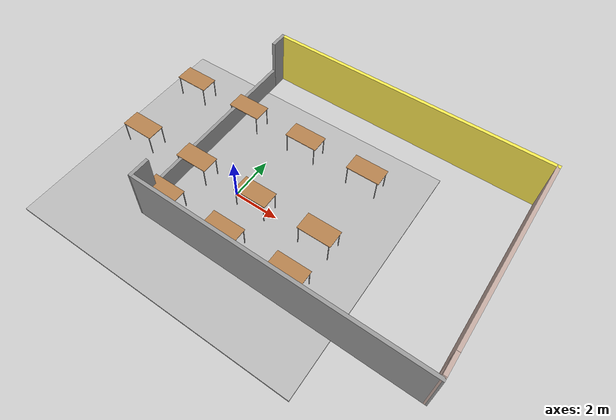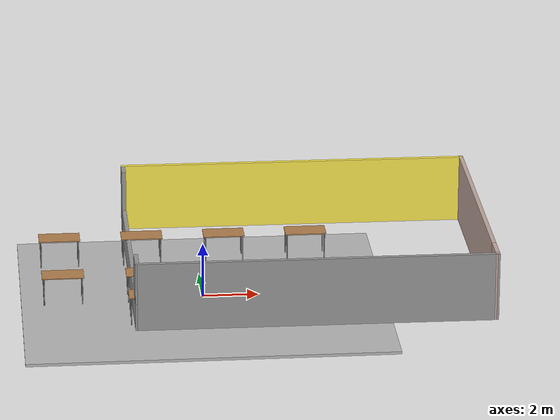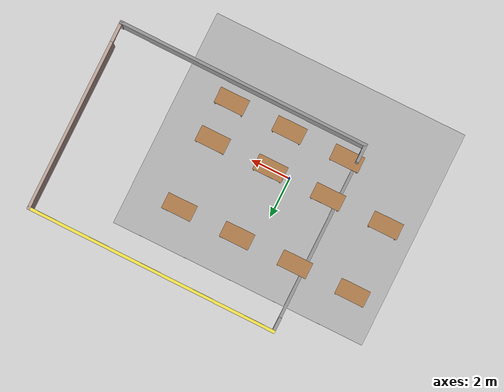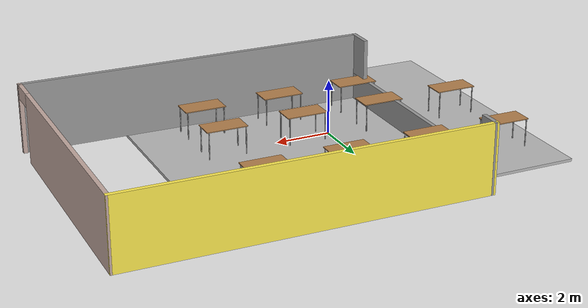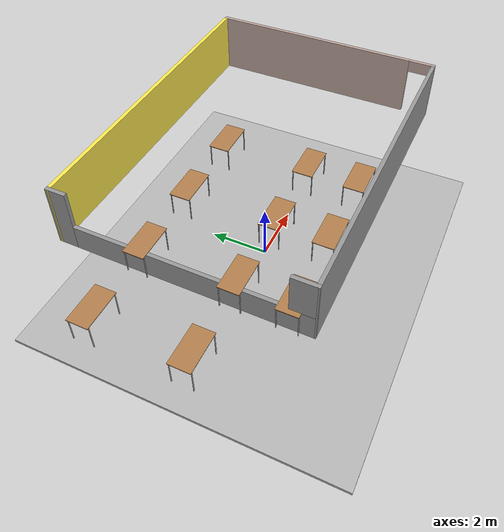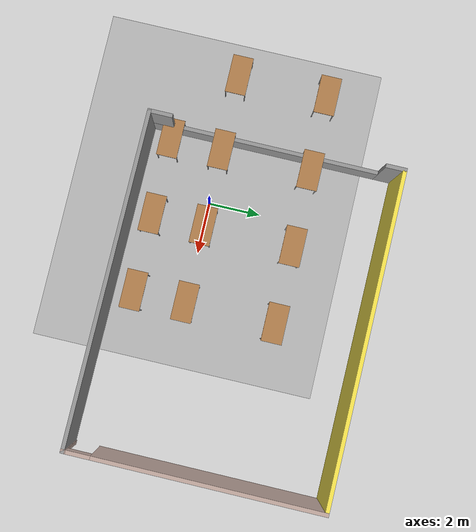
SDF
<sdf version="1.4">
 <world name="default">
  <scene><ambient>0.8 0.8 0.8 1</ambient><background>0.7 0.7 0.7 1</background><shadows>true</shadows></scene>
  <include><uri>model://sun</uri><pose>-2.0 2.0 2.0 0 0 0</pose></include>
  <include><uri>model://mundoteste/pisosala</uri><pose>0 0 0 0 0 -1.57</pose></include>
  <include><uri>model://mundoteste/mesa</uri><pose>-5 0 0 0 0 0</pose></include>
  <include><uri>model://mundoteste/mesa</uri><pose>-2 0 0 0 0 0</pose></include>
  <include><uri>model://mundoteste/mesa</uri><pose>1 0 0 0 0 0</pose></include>
  <include><uri>model://mundoteste/mesa</uri><pose>4 0 0 0 0 0</pose></include>
  <include><uri>model://mundoteste/mesa</uri><pose>-2 -2 0 0 0 0</pose></include>
  <include><uri>model://mundoteste/mesa</uri><pose>1 -2 0 0 0 0</pose></include>
  <include><uri>model://mundoteste/mesa</uri><pose>4 -2 0 0 0 0</pose></include>
  <include><uri>model://mundoteste/mesa</uri><pose>-5 3.5 0 0 0 0</pose></include>
  <include><uri>model://mundoteste/mesa</uri><pose>-2 3.5 0 0 0 0</pose></include>
  <include><uri>model://mundoteste/mesa</uri><pose>1 3.5 0 0 0 0</pose></include>
  <include><uri>model://mundoteste/mesa</uri><pose>4 3.5 0 0 0 0</pose></include>
  <include><uri>model://lab404</uri></include>
  <physics type="ode">
   <real_time_update_rate>1000.0</real_time_update_rate>
   <max_step_size>0.001</max_step_size>
   <real_time_factor>1</real_time_factor>
   <ode>
    <solver>
     <type>quick</type>
     <iters>150</iters>
     <precon_iters>0</precon_iters>
     <sor>1.400000</sor>
     <use_dynamic_moi_rescaling>1</use_dynamic_moi_rescaling>
    </solver>
    <constraints>
     <cfm>0.00001</cfm>
     <erp>0.2</erp>
     <contact_max_correcting_vel>2000.000000</contact_max_correcting_vel>
     <contact_surface_layer>0.01000</contact_surface_layer>
    </constraints>
   </ode>
  </physics>
 </world>
</sdf>

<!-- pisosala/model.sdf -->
<sdf version="1.6">
  <model name="pisosala_forca">
    <static>true</static>
    <link name="course_link">
      <collision name="course_collision">
        <geometry>
          <plane>
            <normal>0 0 1</normal>
            <size>10 13</size>
          </plane>
        </geometry>
        <surface>
          <friction>
            <ode>
              <mu>100</mu>
              <mu2>50</mu2>
            </ode>
          </friction>
        </surface>
      </collision>
      <visual name="course_visual">
        <cast_shadows>false</cast_shadows>
        <geometry>
          <mesh>
            <uri>model://forca/pisosala/materials/scripts/piso.dae</uri>
            <scale>1 1 1</scale>
          </mesh>
        </geometry>
      </visual>
    </link>
  </model>
</sdf>

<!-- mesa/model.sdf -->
<sdf version='1.6'>
  <model name='lab404'>
    <model name='table'>
      <static>1</static>
      <link name='link'>
        <collision name='surface'>
          <pose frame=''>0 0 1 0 -0 0</pose>
          <geometry>
            <box>
              <size>1.5 0.8 0.03</size>
            </box>
          </geometry>
          <surface>
            <friction>
              <ode>
                <mu>0.6</mu>
                <mu2>0.6</mu2>
              </ode>
            </friction>
          </surface>
        </collision>
        <visual name='visual1'>
          <pose frame=''>0 0 1 0 -0 0</pose>
          <geometry>
            <box>
              <size>1.5 0.8 0.03</size>
            </box>
          </geometry>
          <material>
            <script>
              <uri>file://media/materials/scripts/gazebo.material</uri>
              <name>Gazebo/Wood</name>
            </script>
          </material>
        </visual>
        <collision name='front_left_leg'>
          <pose frame=''>0.68 0.38 0.5 0 -0 0</pose>
          <geometry>
            <cylinder>
              <radius>0.02</radius>
              <length>1</length>
            </cylinder>
          </geometry>
        </collision>
        <visual name='front_left_leg'>
          <pose frame=''>0.68 0.38 0.5 0 -0 0</pose>
          <geometry>
            <cylinder>
              <radius>0.02</radius>
              <length>1</length>
            </cylinder>
          </geometry>
          <material>
            <script>
              <uri>file://media/materials/scripts/gazebo.material</uri>
              <name>Gazebo/Grey</name>
            </script>
          </material>
        </visual>
        <collision name='front_right_leg'>
          <pose frame=''>0.68 -0.38 0.5 0 -0 0</pose>
          <geometry>
            <cylinder>
              <radius>0.02</radius>
              <length>1</length>
            </cylinder>
          </geometry>
        </collision>
        <visual name='front_right_leg'>
          <pose frame=''>0.68 -0.38 0.5 0 -0 0</pose>
          <geometry>
            <cylinder>
              <radius>0.02</radius>
              <length>1</length>
            </cylinder>
          </geometry>
          <material>
            <script>
              <uri>file://media/materials/scripts/gazebo.material</uri>
              <name>Gazebo/Grey</name>
            </script>
          </material>
        </visual>
        <collision name='back_right_leg'>
          <pose frame=''>-0.68 -0.38 0.5 0 -0 0</pose>
          <geometry>
            <cylinder>
              <radius>0.02</radius>
              <length>1</length>
            </cylinder>
          </geometry>
        </collision>
        <visual name='back_right_leg'>
          <pose frame=''>-0.68 -0.38 0.5 0 -0 0</pose>
          <geometry>
            <cylinder>
              <radius>0.02</radius>
              <length>1</length>
            </cylinder>
          </geometry>
          <material>
            <script>
              <uri>file://media/materials/scripts/gazebo.material</uri>
              <name>Gazebo/Grey</name>
            </script>
          </material>
        </visual>
        <collision name='back_left_leg'>
          <pose frame=''>-0.68 0.38 0.5 0 -0 0</pose>
          <geometry>
            <cylinder>
              <radius>0.02</radius>
              <length>1</length>
            </cylinder>
          </geometry>
        </collision>
        <visual name='back_left_leg'>
          <pose frame=''>-0.68 0.38 0.5 0 -0 0</pose>
          <geometry>
            <cylinder>
              <radius>0.02</radius>
              <length>1</length>
            </cylinder>
          </geometry>
          <material>
            <script>
              <uri>file://media/materials/scripts/gazebo.material</uri>
              <name>Gazebo/Grey</name>
            </script>
          </material>
        </visual>
      </link>
      <pose frame=''>0 -0 0 0 -0 0</pose>
    </model>
    <static>0</static>
    <allow_auto_disable>1</allow_auto_disable>
  </model>
</sdf>

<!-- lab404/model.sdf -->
<sdf version='1.6'>
  <model name='lab404'>
    <pose frame=''>3.8355 1.905 0 0 -0 0</pose>
    <link name='Wall_0'>
      <collision name='Wall_0_Collision'>
        <geometry>
          <box>
            <size>12.8011 0.15 2.5</size>
          </box>
        </geometry>
        <pose frame=''>0 0 1.25 0 -0 0</pose>
      </collision>
      <visual name='Wall_0_Visual'>
        <pose frame=''>0 0 1.25 0 -0 0</pose>
        <geometry>
          <box>
            <size>12.8011 0.15 2.5</size>
          </box>
        </geometry>
        <material>
          <script>
            <uri>file://media/materials/scripts/gazebo.material</uri>
            <name>Gazebo/Grey</name>
          </script>
          <ambient>1 1 1 1</ambient>
        </material>
        <meta>
          <layer>0</layer>
        </meta>
      </visual>
      <pose frame=''>0 -4.8 0 0 -0 -0.007114</pose>
    </link>
    <link name='Wall_1'>
      <pose frame=''>6.3255 -0.045 0 0 -0 1.5708</pose>
      <visual name='Wall_1_Visual_0'>
        <pose frame=''>-4.78382 0 1.25 0 -0 0</pose>
        <geometry>
          <box>
            <size>0.182364 0.15 2.5</size>
          </box>
        </geometry>
        <material>
          <script>
            <uri>file://media/materials/scripts/gazebo.material</uri>
            <name>Gazebo/Grey</name>
          </script>
          <ambient>0.760784 0.662745 0.627451 1</ambient>
        </material>
        <meta>
          <layer>0</layer>
        </meta>
      </visual>
      <collision name='Wall_1_Collision_0'>
        <geometry>
          <box>
            <size>0.182364 0.15 2.5</size>
          </box>
        </geometry>
        <pose frame=''>-4.78382 0 1.25 0 -0 0</pose>
      </collision>
      <visual name='Wall_1_Visual_1'>
        <pose frame=''>0.541182 0 1.25 0 -0 0</pose>
        <geometry>
          <box>
            <size>8.66764 0.15 2.5</size>
          </box>
        </geometry>
        <material>
          <script>
            <uri>file://media/materials/scripts/gazebo.material</uri>
            <name>Gazebo/Grey</name>
          </script>
          <ambient>0.760784 0.662745 0.627451 1</ambient>
        </material>
        <meta>
          <layer>0</layer>
        </meta>
      </visual>
      <collision name='Wall_1_Collision_1'>
        <geometry>
          <box>
            <size>8.66764 0.15 2.5</size>
          </box>
        </geometry>
        <pose frame=''>0.541182 0 1.25 0 -0 0</pose>
      </collision>
      <visual name='Wall_1_Visual_2'>
        <pose frame=''>-4.24264 0 2.25 0 -0 0</pose>
        <geometry>
          <box>
            <size>0.9 0.15 0.5</size>
          </box>
        </geometry>
        <material>
          <script>
            <uri>file://media/materials/scripts/gazebo.material</uri>
            <name>Gazebo/Grey</name>
          </script>
          <ambient>0.760784 0.662745 0.627451 1</ambient>
        </material>
        <meta>
          <layer>0</layer>
        </meta>
      </visual>
      <collision name='Wall_1_Collision_2'>
        <geometry>
          <box>
            <size>0.9 0.15 0.5</size>
          </box>
        </geometry>
        <pose frame=''>-4.24264 0 2.25 0 -0 0</pose>
      </collision>
    </link>
    <link name='Wall_2'>
      <collision name='Wall_2_Collision'>
        <geometry>
          <box>
            <size>12.8011 0.15 2.5</size>
          </box>
        </geometry>
        <pose frame=''>0 0 1.25 0 -0 0</pose>
      </collision>
      <visual name='Wall_2_Visual'>
        <pose frame=''>0 0 1.25 0 -0 0</pose>
        <geometry>
          <box>
            <size>12.8011 0.15 2.5</size>
          </box>
        </geometry>
        <material>
          <script>
            <uri>file://media/materials/scripts/gazebo.material</uri>
            <name>Gazebo/Grey</name>
          </script>
          <ambient>0.988235 0.913725 0.309804 1</ambient>
        </material>
        <meta>
          <layer>0</layer>
        </meta>
      </visual>
      <pose frame=''>0 4.8 0 0 -0 3.13448</pose>
    </link>
    <link name='Wall_3'>
      <pose frame=''>-6.3255 0.045 0 0 -0 -1.5708</pose>
      <visual name='Wall_3_Visual_0'>
        <pose frame=''>-4.47804 0 1.25 0 -0 0</pose>
        <geometry>
          <box>
            <size>0.793928 0.15 2.5</size>
          </box>
        </geometry>
        <material>
          <script>
            <uri>file://media/materials/scripts/gazebo.material</uri>
            <name>Gazebo/Grey</name>
          </script>
          <ambient>1 1 1 1</ambient>
        </material>
        <meta>
          <layer>0</layer>
        </meta>
      </visual>
      <collision name='Wall_3_Collision_0'>
        <geometry>
          <box>
            <size>0.793928 0.15 2.5</size>
          </box>
        </geometry>
        <pose frame=''>-4.47804 0 1.25 0 -0 0</pose>
      </collision>
      <visual name='Wall_3_Visual_1'>
        <pose frame=''>0.396964 0 0.5 0 -0 0</pose>
        <geometry>
          <box>
            <size>8.95607 0.15 1</size>
          </box>
        </geometry>
        <material>
          <script>
            <uri>file://media/materials/scripts/gazebo.material</uri>
            <name>Gazebo/Grey</name>
          </script>
          <ambient>1 1 1 1</ambient>
        </material>
        <meta>
          <layer>0</layer>
        </meta>
      </visual>
      <collision name='Wall_3_Collision_1'>
        <geometry>
          <box>
            <size>8.95607 0.15 1</size>
          </box>
        </geometry>
        <pose frame=''>0.396964 0 0.5 0 -0 0</pose>
      </collision>
      <visual name='Wall_3_Visual_2'>
        <pose frame=''>4.39696 0 1.75 0 -0 0</pose>
        <geometry>
          <box>
            <size>0.956072 0.15 1.5</size>
          </box>
        </geometry>
        <material>
          <script>
            <uri>file://media/materials/scripts/gazebo.material</uri>
            <name>Gazebo/Grey</name>
          </script>
          <ambient>1 1 1 1</ambient>
        </material>
        <meta>
          <layer>0</layer>
        </meta>
      </visual>
      <collision name='Wall_3_Collision_2'>
        <geometry>
          <box>
            <size>0.956072 0.15 1.5</size>
          </box>
        </geometry>
        <pose frame=''>4.39696 0 1.75 0 -0 0</pose>
      </collision>
    </link>
    <static>1</static>
  </model>
</sdf>
